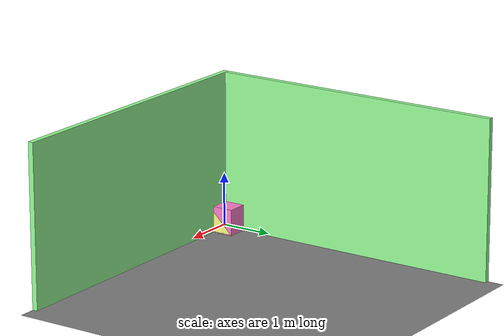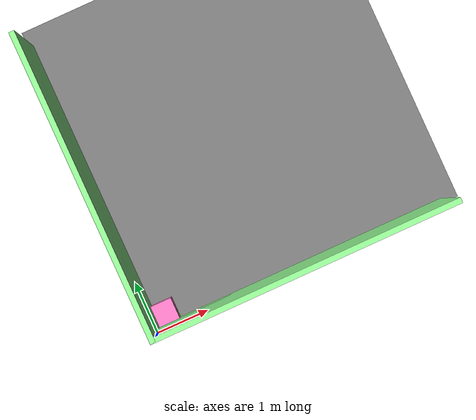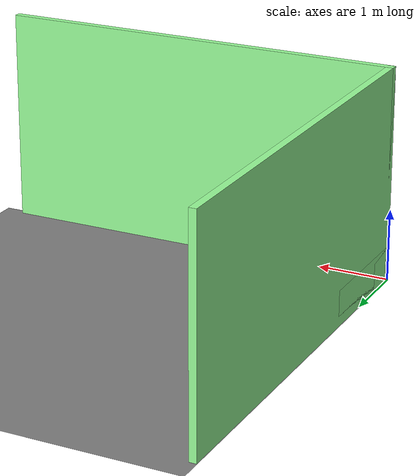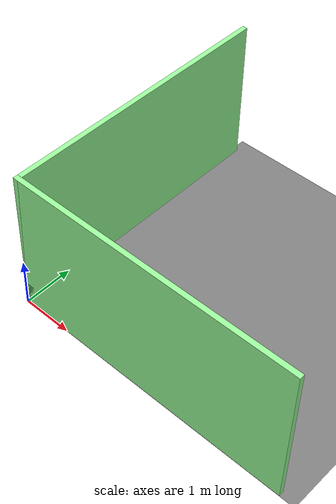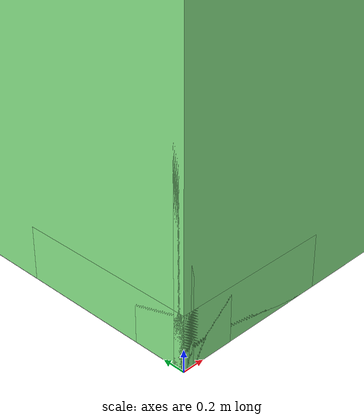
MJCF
<?xml version="1.0" encoding="utf-8"?>
<mujoco>
	<compiler angle="radian" coordinate="local" meshdir="/Users/tom/dev/imperial/FYP/MAax/assets/stls" autolimits="true"></compiler>
	<option timestep="0.005">
		<flag warmstart="enable"></flag>
	</option>
	<worldbody>
		<geom name="floor0" pos="3 3 0" size="3 3 1" type="plane" condim="3"></geom>
		<body name="floor0" pos="3 3 0"></body>
		<body name="wall0" pos="0.05 2.85 1.5">
			<joint name="wall0_slide0" axis="1 0 0" type="slide" damping="0.01" pos="0 0 0" limited="auto" range="-1.0 1.0"></joint>
			<joint name="wall0_slide1" axis="0 1 0" type="slide" damping="0.01" pos="0 0 0" limited="auto" range="-1.0 1.0"></joint>
			<geom size="0.05 2.85 1.5" type="box" condim="3" name="wall0" rgba="0.6 1 0.6 1" group="1" mass="10000" friction="0.01"></geom>
		</body>
		<body name="wall1" pos="2.85 0.05 1.5">
			<joint name="wall1_slide0" axis="1 0 0" type="slide" damping="0.01" pos="0 0 0" limited="auto" range="-1.0 1.0"></joint>
			<joint name="wall1_slide1" axis="0 1 0" type="slide" damping="0.01" pos="0 0 0" limited="auto" range="-1.0 1.0"></joint>
			<geom size="2.85 0.05 1.5" type="box" condim="3" name="wall1" rgba="0.6 1 0.6 1" group="1" mass="10000" friction="0.01"></geom>
		</body>
		<body name="wall2" pos="0.05 2.85 1.5">
			<joint name="wall2_slide0" axis="1 0 0" type="slide" damping="0.01" pos="0 0 0" limited="auto" range="-1.0 1.0"></joint>
			<joint name="wall2_slide1" axis="0 1 0" type="slide" damping="0.01" pos="0 0 0" limited="auto" range="-1.0 1.0"></joint>
			<geom size="0.05 2.85 1.5" type="box" condim="3" name="wall2" rgba="0.6 1 0.6 1" group="1" mass="10000" friction="0.01"></geom>
		</body>
		<body name="wall3" pos="2.85 0.05 1.5">
			<joint name="wall3_slide0" axis="1 0 0" type="slide" damping="0.01" pos="0 0 0" limited="auto" range="-1.0 1.0"></joint>
			<joint name="wall3_slide1" axis="0 1 0" type="slide" damping="0.01" pos="0 0 0" limited="auto" range="-1.0 1.0"></joint>
			<geom size="2.85 0.05 1.5" type="box" condim="3" name="wall3" rgba="0.6 1 0.6 1" group="1" mass="10000" friction="0.01"></geom>
		</body>
		<body name="wall4" pos="0.05 0.85 0.25">
			<joint name="wall4_slide0" axis="1 0 0" type="slide" damping="0.01" pos="0 0 0" limited="auto" range="-1.0 1.0"></joint>
			<joint name="wall4_slide1" axis="0 1 0" type="slide" damping="0.01" pos="0 0 0" limited="auto" range="-1.0 1.0"></joint>
			<geom size="0.05 0.85 0.25" type="box" condim="3" name="wall4" rgba="0.6 1 0.6 1" group="1" mass="10000" friction="0.01"></geom>
		</body>
		<body name="wall5" pos="0.05 0.25 0.25">
			<joint name="wall5_slide0" axis="1 0 0" type="slide" damping="0.01" pos="0 0 0" limited="auto" range="-1.0 1.0"></joint>
			<joint name="wall5_slide1" axis="0 1 0" type="slide" damping="0.01" pos="0 0 0" limited="auto" range="-1.0 1.0"></joint>
			<geom size="0.05 0.25 0.25" type="box" condim="3" name="wall5" rgba="0.6 1 0.6 1" group="1" mass="10000" friction="0.01"></geom>
		</body>
		<body name="wall6" pos="0.25 0.05 0.25">
			<joint name="wall6_slide0" axis="1 0 0" type="slide" damping="0.01" pos="0 0 0" limited="auto" range="-1.0 1.0"></joint>
			<joint name="wall6_slide1" axis="0 1 0" type="slide" damping="0.01" pos="0 0 0" limited="auto" range="-1.0 1.0"></joint>
			<geom size="0.25 0.05 0.25" type="box" condim="3" name="wall6" rgba="0.6 1 0.6 1" group="1" mass="10000" friction="0.01"></geom>
		</body>
		<body name="wall7" pos="0.75 0.05 0.25">
			<joint name="wall7_slide0" axis="1 0 0" type="slide" damping="0.01" pos="0 0 0" limited="auto" range="-1.0 1.0"></joint>
			<joint name="wall7_slide1" axis="0 1 0" type="slide" damping="0.01" pos="0 0 0" limited="auto" range="-1.0 1.0"></joint>
			<geom size="0.75 0.05 0.25" type="box" condim="3" name="wall7" rgba="0.6 1 0.6 1" group="1" mass="10000" friction="0.01"></geom>
		</body>
		<body pos="0.15 0.15 0.15" name="agent0_agent0">
			<joint axis="1 0 0" damping="0.01" name="agent0_slide0" pos="0 0 0" type="slide" limited="auto" range="-100 100"></joint>
			<joint axis="0 1 0" damping="0.01" name="agent0_slide1" pos="0 0 0" type="slide" limited="auto" range="-100 100"></joint>
			<joint axis="0 0 1" damping="0.01" name="agent0_hinge0" pos="0 0 0" type="hinge" limited="auto" range="-100 100"></joint>
			<geom name="agent0_agent" mass="1" pos="0 0 0" rgba="0.258824 0.921569 0.956863 1" size="0.15" type="sphere" euler="1.57 0 0" friction="0.01"></geom>
		</body>
		<body pos="0.15 0.15 0.15" name="agent1_agent1">
			<joint axis="1 0 0" damping="0.01" name="agent1_slide0" pos="0 0 0" type="slide" limited="auto" range="-100 100"></joint>
			<joint axis="0 1 0" damping="0.01" name="agent1_slide1" pos="0 0 0" type="slide" limited="auto" range="-100 100"></joint>
			<joint axis="0 0 1" damping="0.01" name="agent1_hinge0" pos="0 0 0" type="hinge" limited="auto" range="-100 100"></joint>
			<geom name="agent1_agent" mass="1" pos="0 0 0" rgba="0.258824 0.921569 0.956863 1" size="0.15" type="sphere" euler="1.57 0 0" friction="0.01"></geom>
		</body>
		<body pos="0.15 0.15 0.15" name="agent2_agent2">
			<joint axis="1 0 0" damping="0.01" name="agent2_slide0" pos="0 0 0" type="slide" limited="auto" range="-100 100"></joint>
			<joint axis="0 1 0" damping="0.01" name="agent2_slide1" pos="0 0 0" type="slide" limited="auto" range="-100 100"></joint>
			<joint axis="0 0 1" damping="0.01" name="agent2_hinge0" pos="0 0 0" type="hinge" limited="auto" range="-100 100"></joint>
			<geom name="agent2_agent" mass="1" pos="0 0 0" rgba="0.941176 0.078431 0.196078 1" size="0.15" type="sphere" euler="1.57 0 0" friction="0.01"></geom>
		</body>
		<body pos="0.15 0.15 0.15" name="agent3_agent3">
			<joint axis="1 0 0" damping="0.01" name="agent3_slide0" pos="0 0 0" type="slide" limited="auto" range="-100 100"></joint>
			<joint axis="0 1 0" damping="0.01" name="agent3_slide1" pos="0 0 0" type="slide" limited="auto" range="-100 100"></joint>
			<joint axis="0 0 1" damping="0.01" name="agent3_hinge0" pos="0 0 0" type="hinge" limited="auto" range="-100 100"></joint>
			<geom name="agent3_agent" mass="1" pos="0 0 0" rgba="0.941176 0.078431 0.196078 1" size="0.15" type="sphere" euler="1.57 0 0" friction="0.01"></geom>
		</body>
		<body name="moveable-box0" pos="0.25 0.25 0.25">
			<joint name="moveable-box0_slide0" axis="1 0 0" type="slide" damping="0.01" pos="0 0 0" limited="auto"></joint>
			<joint name="moveable-box0_slide1" axis="0 1 0" type="slide" damping="0.01" pos="0 0 0" limited="auto"></joint>
			<joint name="moveable-box0_hinge2" axis="0 0 1" type="hinge" damping="0.01" pos="0 0 0" limited="auto"></joint>
			<geom size="0.25 0.25 0.25" type="box" condim="3" name="moveable-box0" rgba="1 0.5 0.8 1" mass="1" friction="0.2"></geom>
		</body>
		<body name="moveable-box1" pos="0.25 0.25 0.25">
			<joint name="moveable-box1_slide0" axis="1 0 0" type="slide" damping="0.01" pos="0 0 0" limited="auto"></joint>
			<joint name="moveable-box1_slide1" axis="0 1 0" type="slide" damping="0.01" pos="0 0 0" limited="auto"></joint>
			<joint name="moveable-box1_hinge2" axis="0 0 1" type="hinge" damping="0.01" pos="0 0 0" limited="auto"></joint>
			<geom size="0.25 0.25 0.25" type="box" condim="3" name="moveable-box1" rgba="1 0.5 0.8 1" mass="1" friction="0.2"></geom>
		</body>
		<body pos="0.25 0.25 0.25" name="ramp0_ramp0">
			<geom name="ramp0_ramp" pos="0 0 0" type="mesh" mesh="ramp0_ramp" mass="1" rgba="1 1 0.5 1" friction="0.01"></geom>
			<joint type="free" name="ramp0_free" damping="0.001"></joint>
		</body>
	</worldbody>
	<actuator>
		<motor gear="100" joint="agent0_slide0"></motor>
		<motor gear="100" joint="agent0_slide1"></motor>
		<motor gear="100" joint="agent0_hinge0"></motor>
		<motor gear="100" joint="agent1_slide0"></motor>
		<motor gear="100" joint="agent1_slide1"></motor>
		<motor gear="100" joint="agent1_hinge0"></motor>
		<motor gear="100" joint="agent2_slide0"></motor>
		<motor gear="100" joint="agent2_slide1"></motor>
		<motor gear="100" joint="agent2_hinge0"></motor>
		<motor gear="100" joint="agent3_slide0"></motor>
		<motor gear="100" joint="agent3_slide1"></motor>
		<motor gear="100" joint="agent3_hinge0"></motor>
	</actuator>
	<asset>
		<mesh file="ramp.stl" name="ramp0_ramp" scale="0.5 0.5 0.5"></mesh>
	</asset>
</mujoco>
